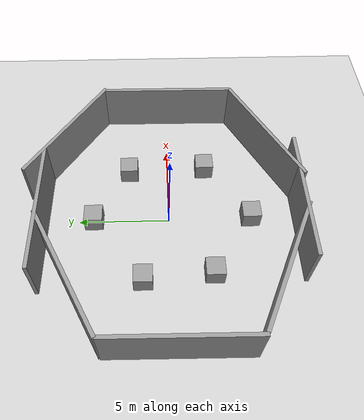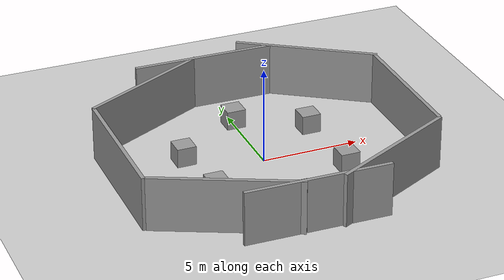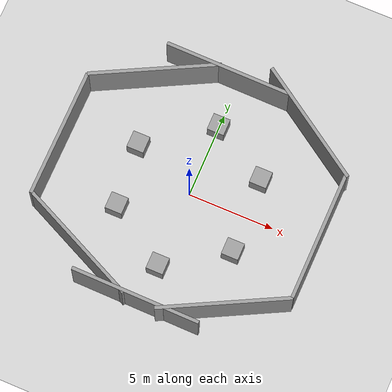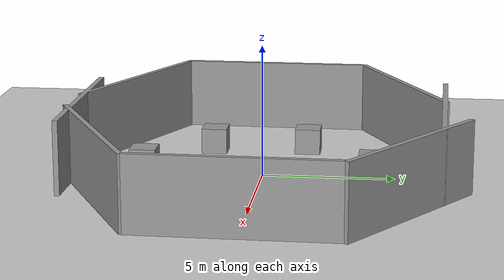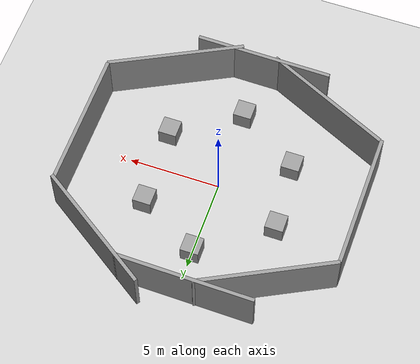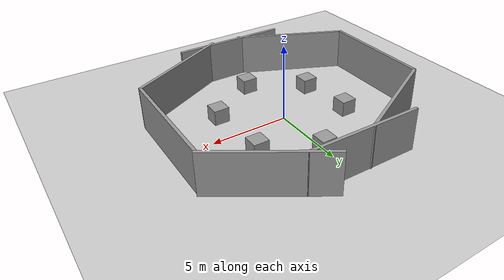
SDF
<sdf version="1.6">
 <world name="default">
  <light name="sun" type="directional">
   <pose>0 0 10 0 -0 0</pose>
   <diffuse>0.8 0.8 0.8 1</diffuse>
   <specular>0.2 0.2 0.2 1</specular>
   <attenuation>
    <range>1000</range>
    <constant>0.9</constant>
    <linear>0.01</linear>
    <quadratic>0.001</quadratic>
   </attenuation>
   <direction>-0.5 0.1 -0.9</direction>
  </light>
  <model name="ground_plane">
   <static>1</static>
   <link name="link">
    <collision name="collision">
     <geometry><plane><normal>0 0 1</normal><size>100 100</size></plane></geometry>
     <surface>
      <contact><collide_bitmask>65535</collide_bitmask></contact>
      <friction><ode><mu>100</mu><mu2>50</mu2></ode></friction>
     </surface>
    </collision>
    <visual name="visual">
     <cast_shadows>0</cast_shadows>
     <geometry><plane><normal>0 0 1</normal><size>100 100</size></plane></geometry>
     <material>
      <script><uri>file://media/materials/scripts/gazebo.material</uri><name>Gazebo/Grey</name></script>
     </material>
    </visual>
   </link>
  </model>
  <physics name="default_physics" default="0" type="ode">
   <real_time_update_rate>1000</real_time_update_rate>
   <max_step_size>0.001</max_step_size>
   <real_time_factor>1</real_time_factor>
   <ode>
    <solver>
     <type>quick</type>
     <iters>150</iters>
     <precon_iters>0</precon_iters>
     <sor>1.4</sor>
     <use_dynamic_moi_rescaling>1</use_dynamic_moi_rescaling>
    </solver>
    <constraints>
     <cfm>1e-05</cfm>
     <erp>0.2</erp>
     <contact_max_correcting_vel>2000</contact_max_correcting_vel>
     <contact_surface_layer>0.01</contact_surface_layer>
    </constraints>
   </ode>
  </physics>
  <scene><ambient>0.4 0.4 0.4 1</ambient><background>0.7 0.7 0.7 1</background><shadows>1</shadows></scene>
  <gravity>0 0 -9.8</gravity>
  <magnetic_field>6e-06 2.3e-05 -4.2e-05</magnetic_field>
  <atmosphere type="adiabatic"/>
  <audio><device>default</device></audio>
  <spherical_coordinates>
   <surface_model>EARTH_WGS84</surface_model>
   <latitude_deg>0</latitude_deg>
   <longitude_deg>0</longitude_deg>
   <elevation>0</elevation>
   <heading_deg>0</heading_deg>
  </spherical_coordinates>
  <model name="grey_wall">
   <static>1</static>
   <link name="link">
    <pose>0 0 1.4 0 -0 0</pose>
    <collision name="collision"><geometry><box><size>7.5 0.2 2.8</size></box></geometry></collision>
    <visual name="visual">
     <cast_shadows>0</cast_shadows>
     <geometry><box><size>7.5 0.2 2.8</size></box></geometry>
     <material>
      <script>
       <uri>model://grey_wall/materials/scripts</uri>
       <uri>model://grey_wall/materials/textures</uri>
       <name>vrc/grey_wall</name>
      </script>
     </material>
    </visual>
   </link>
   <pose>-4.33144 5.18997 1e-06 0 0.001235 0.475981</pose>
  </model>
  <model name="grey_wall_clone">
   <static>1</static>
   <link name="link">
    <pose>0 0 1.4 0 -0 0</pose>
    <collision name="collision"><geometry><box><size>7.5 0.2 2.8</size></box></geometry></collision>
    <visual name="visual">
     <cast_shadows>0</cast_shadows>
     <geometry><box><size>7.5 0.2 2.8</size></box></geometry>
     <material>
      <script>
       <uri>model://grey_wall/materials/scripts</uri>
       <uri>model://grey_wall/materials/textures</uri>
       <name>vrc/grey_wall</name>
      </script>
     </material>
    </visual>
   </link>
   <pose>-7.67041 -0.274119 0.002544 0.001093 0.000576 1.56189</pose>
  </model>
  <model name="grey_wall_clone_0">
   <static>1</static>
   <link name="link">
    <pose>0 0 1.4 0 -0 0</pose>
    <collision name="collision"><geometry><box><size>7.5 0.2 2.8</size></box></geometry></collision>
    <visual name="visual">
     <cast_shadows>0</cast_shadows>
     <geometry><box><size>7.5 0.2 2.8</size></box></geometry>
     <material>
      <script>
       <uri>model://grey_wall/materials/scripts</uri>
       <uri>model://grey_wall/materials/textures</uri>
       <name>vrc/grey_wall</name>
      </script>
     </material>
    </visual>
   </link>
   <pose>-4.21902 -5.57247 -0.000206 -0.000978 0.000754 -0.438369</pose>
  </model>
  <model name="grey_wall_clone_clone">
   <static>1</static>
   <link name="link">
    <pose>0 0 1.4 0 -0 0</pose>
    <collision name="collision"><geometry><box><size>7.5 0.2 2.8</size></box></geometry></collision>
    <visual name="visual">
     <cast_shadows>0</cast_shadows>
     <geometry><box><size>7.5 0.2 2.8</size></box></geometry>
     <material>
      <script>
       <uri>model://grey_wall/materials/scripts</uri>
       <uri>model://grey_wall/materials/textures</uri>
       <name>vrc/grey_wall</name>
      </script>
     </material>
    </visual>
   </link>
   <pose>7.70419 -0.102116 -0.002082 0.001093 0.000576 1.56189</pose>
  </model>
  <model name="grey_wall_clone_1">
   <static>1</static>
   <link name="link">
    <pose>0 0 1.4 0 -0 0</pose>
    <collision name="collision"><geometry><box><size>7.5 0.2 2.8</size></box></geometry></collision>
    <visual name="visual">
     <cast_shadows>0</cast_shadows>
     <geometry><box><size>7.5 0.2 2.8</size></box></geometry>
     <material>
      <script>
       <uri>model://grey_wall/materials/scripts</uri>
       <uri>model://grey_wall/materials/textures</uri>
       <name>vrc/grey_wall</name>
      </script>
     </material>
    </visual>
   </link>
   <pose>4.38367 -5.57588 1e-06 0 0.001235 0.475981</pose>
  </model>
  <model name="grey_wall_clone_0_clone">
   <static>1</static>
   <link name="link">
    <pose>0 0 1.4 0 -0 0</pose>
    <collision name="collision"><geometry><box><size>7.5 0.2 2.8</size></box></geometry></collision>
    <visual name="visual">
     <cast_shadows>0</cast_shadows>
     <geometry><box><size>7.5 0.2 2.8</size></box></geometry>
     <material>
      <script>
       <uri>model://grey_wall/materials/scripts</uri>
       <uri>model://grey_wall/materials/textures</uri>
       <name>vrc/grey_wall</name>
      </script>
     </material>
    </visual>
   </link>
   <pose>4.75231 5.69889 -0.00195 -0.001081 0.000597 -0.590419</pose>
  </model>
  <model name="unit_box">
   <link name="link">
    <inertial>
     <mass>500</mass>
     <inertia><ixx>83.3333</ixx><ixy>0</ixy><ixz>0</ixz><iyy>83.3333</iyy><iyz>0</iyz><izz>83.3333</izz></inertia>
    </inertial>
    <visual name="visual">
     <geometry><box><size>1 1 1</size></box></geometry>
     <material>
      <script><name>Gazebo/Grey</name><uri>file://media/materials/scripts/gazebo.material</uri></script>
      <shader type="vertex"><normal_map>__default__</normal_map></shader>
      <ambient>0.3 0.3 0.3 1</ambient>
      <diffuse>0.7 0.7 0.7 1</diffuse>
      <specular>0.01 0.01 0.01 1</specular>
      <emissive>0 0 0 1</emissive>
     </material>
    </visual>
    <collision name="collision">
     <geometry><box><size>1 1 1</size></box></geometry>
     <surface>
      <friction>
       <ode><mu>1</mu><mu2>1</mu2><fdir1>0 0 0</fdir1><slip1>0</slip1><slip2>0</slip2></ode>
       <torsional>
        <coefficient>1</coefficient>
        <patch_radius>0</patch_radius>
        <surface_radius>0</surface_radius>
        <use_patch_radius>1</use_patch_radius>
        <ode><slip>0</slip></ode>
       </torsional>
      </friction>
      <bounce><restitution_coefficient>0</restitution_coefficient><threshold>1e+06</threshold></bounce>
      <contact>
       <collide_without_contact>0</collide_without_contact>
       <collide_without_contact_bitmask>1</collide_without_contact_bitmask>
       <collide_bitmask>1</collide_bitmask>
       <ode>
        <soft_cfm>0</soft_cfm>
        <soft_erp>0.2</soft_erp>
        <kp>1e+13</kp>
        <kd>1</kd>
        <max_vel>0.01</max_vel>
        <min_depth>0</min_depth>
       </ode>
       <bullet>
        <split_impulse>1</split_impulse>
        <split_impulse_penetration_threshold>-0.01</split_impulse_penetration_threshold>
        <soft_cfm>0</soft_cfm>
        <soft_erp>0.2</soft_erp>
        <kp>1e+13</kp>
        <kd>1</kd>
       </bullet>
      </contact>
     </surface>
    </collision>
   </link>
   <static>0</static>
   <pose>-3.724 1.45303 0.5 0 -0 0</pose>
  </model>
  <model name="unit_box_clone">
   <link name="link">
    <inertial>
     <mass>500</mass>
     <inertia><ixx>83.3333</ixx><ixy>0</ixy><ixz>0</ixz><iyy>83.3333</iyy><iyz>0</iyz><izz>83.3333</izz></inertia>
    </inertial>
    <visual name="visual">
     <geometry><box><size>1 1 1</size></box></geometry>
     <material>
      <script><name>Gazebo/Grey</name><uri>file://media/materials/scripts/gazebo.material</uri></script>
      <shader type="vertex"><normal_map>__default__</normal_map></shader>
      <ambient>0.3 0.3 0.3 1</ambient>
      <diffuse>0.7 0.7 0.7 1</diffuse>
      <specular>0.01 0.01 0.01 1</specular>
      <emissive>0 0 0 1</emissive>
     </material>
    </visual>
    <collision name="collision">
     <geometry><box><size>1 1 1</size></box></geometry>
     <surface>
      <friction>
       <ode><mu>1</mu><mu2>1</mu2><fdir1>0 0 0</fdir1><slip1>0</slip1><slip2>0</slip2></ode>
       <torsional>
        <coefficient>1</coefficient>
        <patch_radius>0</patch_radius>
        <surface_radius>0</surface_radius>
        <use_patch_radius>1</use_patch_radius>
        <ode><slip>0</slip></ode>
       </torsional>
      </friction>
      <bounce><restitution_coefficient>0</restitution_coefficient><threshold>1e+06</threshold></bounce>
      <contact>
       <collide_without_contact>0</collide_without_contact>
       <collide_without_contact_bitmask>1</collide_without_contact_bitmask>
       <collide_bitmask>1</collide_bitmask>
       <ode>
        <soft_cfm>0</soft_cfm>
        <soft_erp>0.2</soft_erp>
        <kp>1e+13</kp>
        <kd>1</kd>
        <max_vel>0.01</max_vel>
        <min_depth>0</min_depth>
       </ode>
       <bullet>
        <split_impulse>1</split_impulse>
        <split_impulse_penetration_threshold>-0.01</split_impulse_penetration_threshold>
        <soft_cfm>0</soft_cfm>
        <soft_erp>0.2</soft_erp>
        <kp>1e+13</kp>
        <kd>1</kd>
       </bullet>
      </contact>
     </surface>
    </collision>
   </link>
   <static>0</static>
   <pose>3.35641 2.23481 0.5 0 -0 0</pose>
  </model>
  <model name="unit_box_clone_0">
   <link name="link">
    <inertial>
     <mass>500</mass>
     <inertia><ixx>83.3333</ixx><ixy>0</ixy><ixz>0</ixz><iyy>83.3333</iyy><iyz>0</iyz><izz>83.3333</izz></inertia>
    </inertial>
    <visual name="visual">
     <geometry><box><size>1 1 1</size></box></geometry>
     <material>
      <script><name>Gazebo/Grey</name><uri>file://media/materials/scripts/gazebo.material</uri></script>
      <shader type="vertex"><normal_map>__default__</normal_map></shader>
      <ambient>0.3 0.3 0.3 1</ambient>
      <diffuse>0.7 0.7 0.7 1</diffuse>
      <specular>0.01 0.01 0.01 1</specular>
      <emissive>0 0 0 1</emissive>
     </material>
    </visual>
    <collision name="collision">
     <geometry><box><size>1 1 1</size></box></geometry>
     <surface>
      <friction>
       <ode><mu>1</mu><mu2>1</mu2><fdir1>0 0 0</fdir1><slip1>0</slip1><slip2>0</slip2></ode>
       <torsional>
        <coefficient>1</coefficient>
        <patch_radius>0</patch_radius>
        <surface_radius>0</surface_radius>
        <use_patch_radius>1</use_patch_radius>
        <ode><slip>0</slip></ode>
       </torsional>
      </friction>
      <bounce><restitution_coefficient>0</restitution_coefficient><threshold>1e+06</threshold></bounce>
      <contact>
       <collide_without_contact>0</collide_without_contact>
       <collide_without_contact_bitmask>1</collide_without_contact_bitmask>
       <collide_bitmask>1</collide_bitmask>
       <ode>
        <soft_cfm>0</soft_cfm>
        <soft_erp>0.2</soft_erp>
        <kp>1e+13</kp>
        <kd>1</kd>
        <max_vel>0.01</max_vel>
        <min_depth>0</min_depth>
       </ode>
       <bullet>
        <split_impulse>1</split_impulse>
        <split_impulse_penetration_threshold>-0.01</split_impulse_penetration_threshold>
        <soft_cfm>0</soft_cfm>
        <soft_erp>0.2</soft_erp>
        <kp>1e+13</kp>
        <kd>1</kd>
       </bullet>
      </contact>
     </surface>
    </collision>
   </link>
   <static>0</static>
   <pose>-0.001128 4.15294 0.5 0 -0 0</pose>
  </model>
  <model name="unit_box_clone_1">
   <link name="link">
    <inertial>
     <mass>500</mass>
     <inertia><ixx>83.3333</ixx><ixy>0</ixy><ixz>0</ixz><iyy>83.3333</iyy><iyz>0</iyz><izz>83.3333</izz></inertia>
    </inertial>
    <visual name="visual">
     <geometry><box><size>1 1 1</size></box></geometry>
     <material>
      <script><name>Gazebo/Grey</name><uri>file://media/materials/scripts/gazebo.material</uri></script>
      <shader type="vertex"><normal_map>__default__</normal_map></shader>
      <ambient>0.3 0.3 0.3 1</ambient>
      <diffuse>0.7 0.7 0.7 1</diffuse>
      <specular>0.01 0.01 0.01 1</specular>
      <emissive>0 0 0 1</emissive>
     </material>
    </visual>
    <collision name="collision">
     <geometry><box><size>1 1 1</size></box></geometry>
     <surface>
      <friction>
       <ode><mu>1</mu><mu2>1</mu2><fdir1>0 0 0</fdir1><slip1>0</slip1><slip2>0</slip2></ode>
       <torsional>
        <coefficient>1</coefficient>
        <patch_radius>0</patch_radius>
        <surface_radius>0</surface_radius>
        <use_patch_radius>1</use_patch_radius>
        <ode><slip>0</slip></ode>
       </torsional>
      </friction>
      <bounce><restitution_coefficient>0</restitution_coefficient><threshold>1e+06</threshold></bounce>
      <contact>
       <collide_without_contact>0</collide_without_contact>
       <collide_without_contact_bitmask>1</collide_without_contact_bitmask>
       <collide_bitmask>1</collide_bitmask>
       <ode>
        <soft_cfm>0</soft_cfm>
        <soft_erp>0.2</soft_erp>
        <kp>1e+13</kp>
        <kd>1</kd>
        <max_vel>0.01</max_vel>
        <min_depth>0</min_depth>
       </ode>
       <bullet>
        <split_impulse>1</split_impulse>
        <split_impulse_penetration_threshold>-0.01</split_impulse_penetration_threshold>
        <soft_cfm>0</soft_cfm>
        <soft_erp>0.2</soft_erp>
        <kp>1e+13</kp>
        <kd>1</kd>
       </bullet>
      </contact>
     </surface>
    </collision>
   </link>
   <static>0</static>
   <pose>-3.41679 -2.26365 0.5 0 -0 0</pose>
  </model>
  <model name="unit_box_clone_2">
   <link name="link">
    <inertial>
     <mass>500</mass>
     <inertia><ixx>83.3333</ixx><ixy>0</ixy><ixz>0</ixz><iyy>83.3333</iyy><iyz>0</iyz><izz>83.3333</izz></inertia>
    </inertial>
    <visual name="visual">
     <geometry><box><size>1 1 1</size></box></geometry>
     <material>
      <script><name>Gazebo/Grey</name><uri>file://media/materials/scripts/gazebo.material</uri></script>
      <shader type="vertex"><normal_map>__default__</normal_map></shader>
      <ambient>0.3 0.3 0.3 1</ambient>
      <diffuse>0.7 0.7 0.7 1</diffuse>
      <specular>0.01 0.01 0.01 1</specular>
      <emissive>0 0 0 1</emissive>
     </material>
    </visual>
    <collision name="collision">
     <geometry><box><size>1 1 1</size></box></geometry>
     <surface>
      <friction>
       <ode><mu>1</mu><mu2>1</mu2><fdir1>0 0 0</fdir1><slip1>0</slip1><slip2>0</slip2></ode>
       <torsional>
        <coefficient>1</coefficient>
        <patch_radius>0</patch_radius>
        <surface_radius>0</surface_radius>
        <use_patch_radius>1</use_patch_radius>
        <ode><slip>0</slip></ode>
       </torsional>
      </friction>
      <bounce><restitution_coefficient>0</restitution_coefficient><threshold>1e+06</threshold></bounce>
      <contact>
       <collide_without_contact>0</collide_without_contact>
       <collide_without_contact_bitmask>1</collide_without_contact_bitmask>
       <collide_bitmask>1</collide_bitmask>
       <ode>
        <soft_cfm>0</soft_cfm>
        <soft_erp>0.2</soft_erp>
        <kp>1e+13</kp>
        <kd>1</kd>
        <max_vel>0.01</max_vel>
        <min_depth>0</min_depth>
       </ode>
       <bullet>
        <split_impulse>1</split_impulse>
        <split_impulse_penetration_threshold>-0.01</split_impulse_penetration_threshold>
        <soft_cfm>0</soft_cfm>
        <soft_erp>0.2</soft_erp>
        <kp>1e+13</kp>
        <kd>1</kd>
       </bullet>
      </contact>
     </surface>
    </collision>
   </link>
   <static>0</static>
   <pose>0.037664 -4.53091 0.5 0 -0 0</pose>
  </model>
  <model name="unit_box_clone_3">
   <link name="link">
    <inertial>
     <mass>500</mass>
     <inertia><ixx>83.3333</ixx><ixy>0</ixy><ixz>0</ixz><iyy>83.3333</iyy><iyz>0</iyz><izz>83.3333</izz></inertia>
    </inertial>
    <visual name="visual">
     <geometry><box><size>1 1 1</size></box></geometry>
     <material>
      <script><name>Gazebo/Grey</name><uri>file://media/materials/scripts/gazebo.material</uri></script>
      <shader type="vertex"><normal_map>__default__</normal_map></shader>
      <ambient>0.3 0.3 0.3 1</ambient>
      <diffuse>0.7 0.7 0.7 1</diffuse>
      <specular>0.01 0.01 0.01 1</specular>
      <emissive>0 0 0 1</emissive>
     </material>
    </visual>
    <collision name="collision">
     <geometry><box><size>1 1 1</size></box></geometry>
     <surface>
      <friction>
       <ode><mu>1</mu><mu2>1</mu2><fdir1>0 0 0</fdir1><slip1>0</slip1><slip2>0</slip2></ode>
       <torsional>
        <coefficient>1</coefficient>
        <patch_radius>0</patch_radius>
        <surface_radius>0</surface_radius>
        <use_patch_radius>1</use_patch_radius>
        <ode><slip>0</slip></ode>
       </torsional>
      </friction>
      <bounce><restitution_coefficient>0</restitution_coefficient><threshold>1e+06</threshold></bounce>
      <contact>
       <collide_without_contact>0</collide_without_contact>
       <collide_without_contact_bitmask>1</collide_without_contact_bitmask>
       <collide_bitmask>1</collide_bitmask>
       <ode>
        <soft_cfm>0</soft_cfm>
        <soft_erp>0.2</soft_erp>
        <kp>1e+13</kp>
        <kd>1</kd>
        <max_vel>0.01</max_vel>
        <min_depth>0</min_depth>
       </ode>
       <bullet>
        <split_impulse>1</split_impulse>
        <split_impulse_penetration_threshold>-0.01</split_impulse_penetration_threshold>
        <soft_cfm>0</soft_cfm>
        <soft_erp>0.2</soft_erp>
        <kp>1e+13</kp>
        <kd>1</kd>
       </bullet>
      </contact>
     </surface>
    </collision>
   </link>
   <static>0</static>
   <pose>3.51976 -2.15526 0.5 0 -0 0</pose>
  </model>
  <model name="grey_wall_clone_0_clone_0">
   <static>1</static>
   <link name="link">
    <pose>0 0 1.4 0 -0 0</pose>
    <collision name="collision"><geometry><box><size>7.5 0.2 2.8</size></box></geometry></collision>
    <visual name="visual">
     <cast_shadows>0</cast_shadows>
     <geometry><box><size>7.5 0.2 2.8</size></box></geometry>
     <material>
      <script>
       <uri>model://grey_wall/materials/scripts</uri>
       <uri>model://grey_wall/materials/textures</uri>
       <name>vrc/grey_wall</name>
      </script>
     </material>
    </visual>
   </link>
   <pose>-0.175299 -7.04518 -0.000671 -0.000579 0.001091 -0.011936</pose>
  </model>
  <model name="grey_wall_clone_0_clone_0_clone">
   <static>1</static>
   <link name="link">
    <pose>0 0 1.4 0 -0 0</pose>
    <collision name="collision"><geometry><box><size>7.5 0.2 2.8</size></box></geometry></collision>
    <visual name="visual">
     <cast_shadows>0</cast_shadows>
     <geometry><box><size>7.5 0.2 2.8</size></box></geometry>
     <material>
      <script>
       <uri>model://grey_wall/materials/scripts</uri>
       <uri>model://grey_wall/materials/textures</uri>
       <name>vrc/grey_wall</name>
      </script>
     </material>
    </visual>
   </link>
   <pose>-0.53276 6.82456 -0.000671 -0.000579 0.001091 -0.011936</pose>
  </model>
 </world>
</sdf>
